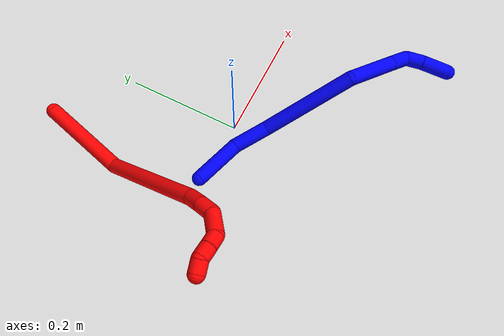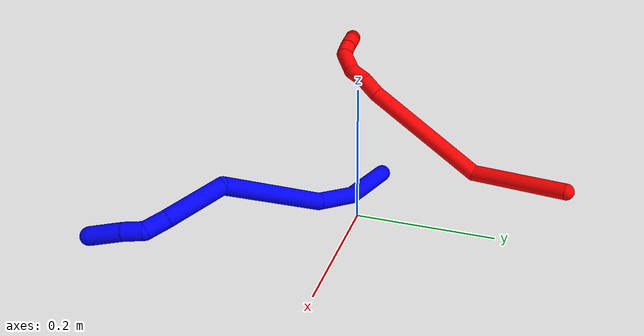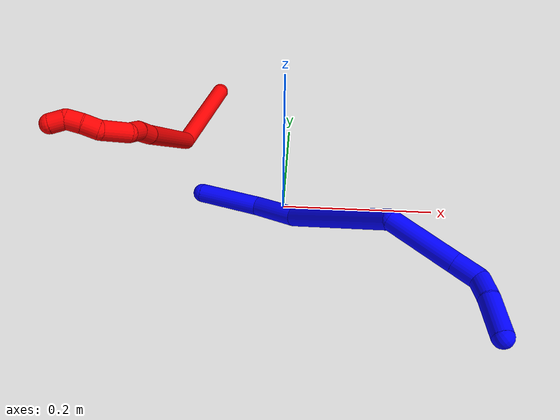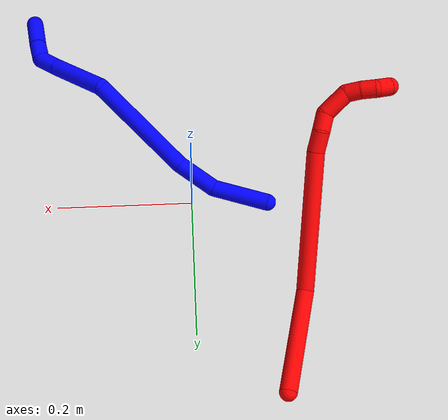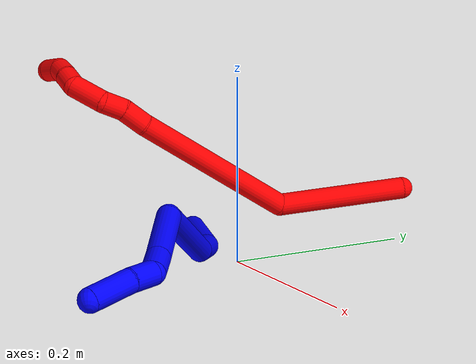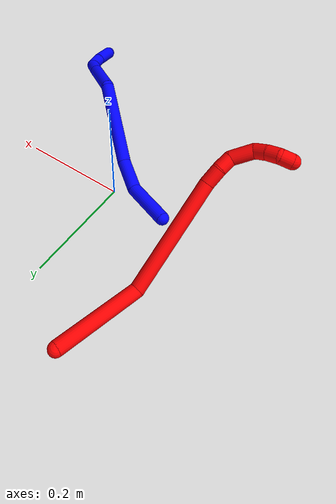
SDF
<sdf version="1.7">
 <world name="default">
  <plugin name="TubeGeneratorPlugin" filename="libtube_generator_plugin.so"/>
  <model name="photoneo_s_sensor">
   <static>1</static>
   <pose>0 0 2 1.57079 1.57079 3.14159</pose>
   <link name="link">
    <inertial><mass>0.1</mass></inertial>
    <sensor name="sensor" type="depth">
     <update_rate>30</update_rate>
     <camera>
      <horizontal_fov>1.22</horizontal_fov>
      <image><width>1920</width><height>1200</height><format>B8G8R8</format></image>
      <clip><near>0.1</near><far>4</far></clip>
      <depth_camera><output>points</output></depth_camera>
     </camera>
     <plugin name="camera_plugin" filename="libgazebo_ros_depth_camera.so">
      <baseline>0.2</baseline>
      <alwaysOn>1</alwaysOn>
      <updateRate>0.0</updateRate>
      <cameraName>camera_ir</cameraName>
      <imageTopicName>/camera/color/image_raw</imageTopicName>
      <cameraInfoTopicName>/camera/color/camera_info</cameraInfoTopicName>
      <depthImageTopicName>/camera/depth/image_raw</depthImageTopicName>
      <depthImageCameraInfoTopicName>/camera/depth/camera_info</depthImageCameraInfoTopicName>
      <pointCloudTopicName>/camera/depth/points</pointCloudTopicName>
      <frameName>fr_optical</frameName>
      <pointCloudCutoff>0.1</pointCloudCutoff>
      <pointCloudCutoffMax>2.0</pointCloudCutoffMax>
      <distortionK1>0</distortionK1>
      <distortionK2>0</distortionK2>
      <distortionK3>0</distortionK3>
      <distortionT1>0</distortionT1>
      <distortionT2>0</distortionT2>
      <CxPrime>0</CxPrime>
      <Cx>0</Cx>
      <Cy>0</Cy>
      <focalLength>0</focalLength>
      <hackBaseline>0</hackBaseline>
     </plugin>
    </sensor>
   </link>
  </model>
  <gravity>0 0 -9.8</gravity>
  <magnetic_field>6e-06 2.3e-05 -4.2e-05</magnetic_field>
  <atmosphere type="adiabatic"/>
  <physics name="default_physics" default="0" type="ode">
   <max_step_size>0.003</max_step_size>
   <real_time_factor>1</real_time_factor>
   <real_time_update_rate>1000</real_time_update_rate>
   <max_contacts>10000</max_contacts>
   <ode>
    <solver>
     <type>quick</type>
     <iters>100</iters>
     <sor>1.3</sor>
     <use_dynamic_moi_rescaling>0</use_dynamic_moi_rescaling>
    </solver>
    <constraints>
     <contact_max_correcting_vel>0</contact_max_correcting_vel>
     <contact_surface_layer>0.001</contact_surface_layer>
     <cfm>0</cfm>
     <erp>0.2</erp>
    </constraints>
   </ode>
  </physics>
  <scene><ambient>0.4 0.4 0.4 1</ambient><background>0.7 0.7 0.7 1</background><shadows>0</shadows></scene>
  <audio><device>default</device></audio>
  <spherical_coordinates>
   <surface_model>EARTH_WGS84</surface_model>
   <latitude_deg>0</latitude_deg>
   <longitude_deg>0</longitude_deg>
   <elevation>0</elevation>
   <heading_deg>0</heading_deg>
  </spherical_coordinates>
  <model name="bin">
   <static>1</static>
   <link name="bottom">
    <collision name="collision-bottom">
     <pose>0 0 -0.01 0 -0 0</pose>
     <geometry><box><size>0.8 0.6 0.02</size></box></geometry>
     <surface>
      <friction><ode><mu>100</mu><mu2>100</mu2></ode></friction>
      <contact><collide_bitmask>65535</collide_bitmask></contact>
     </surface>
    </collision>
   </link>
   <link name="west_wall">
    <collision name="collision-west_wall">
     <pose>-0.41 0 0.1 0 -0 0</pose>
     <geometry><box><size>0.02 0.6 0.2</size></box></geometry>
     <surface>
      <friction><ode><mu>100</mu><mu2>100</mu2></ode></friction>
      <contact><collide_bitmask>65535</collide_bitmask></contact>
     </surface>
    </collision>
   </link>
   <link name="east_wall">
    <collision name="collision-east_wall">
     <pose>0.41 0 0.1 0 -0 0</pose>
     <geometry><box><size>0.02 0.6 0.2</size></box></geometry>
     <surface>
      <friction><ode><mu>100</mu><mu2>100</mu2></ode></friction>
      <contact><collide_bitmask>65535</collide_bitmask></contact>
     </surface>
    </collision>
   </link>
   <link name="south_wall">
    <collision name="collision-south_wall">
     <pose>0 -0.31 0.1 0 -0 0</pose>
     <geometry><box><size>0.8 0.02 0.2</size></box></geometry>
     <surface>
      <friction><ode><mu>100</mu><mu2>100</mu2></ode></friction>
      <contact><collide_bitmask>65535</collide_bitmask></contact>
     </surface>
    </collision>
   </link>
   <link name="north_wall">
    <collision name="collision-north_wall">
     <pose>0 0.31 0.1 0 -0 0</pose>
     <geometry><box><size>0.8 0.02 0.2</size></box></geometry>
     <surface>
      <friction><ode><mu>100</mu><mu2>100</mu2></ode></friction>
      <contact><collide_bitmask>65535</collide_bitmask></contact>
     </surface>
    </collision>
   </link>
  </model>
  <model name="1">
   <static>0</static>
   <link name="1">
    <collision name="collision-cylinder-e_1_1_4">
     <pose>0.012807 -0.024182 0.030929 0.663596 0.315327 0.109441</pose>
     <geometry><cylinder><radius>0.0125</radius><length>0.082593</length></cylinder></geometry>
     <surface>
      <friction><ode><mu>1.16</mu><mu2>1.16</mu2><slip1>0</slip1><slip2>0</slip2></ode></friction>
      <contact><ode><kp>1e+06</kp><kd>1</kd><max_vel>0</max_vel><min_depth>0.001</min_depth></ode></contact>
     </surface>
    </collision>
    <visual name="visual-cylinder-e_1_1_4">
     <pose>0.012807 -0.024182 0.030929 0.663596 0.315327 0.109441</pose>
     <geometry><cylinder><radius>0.0125</radius><length>0.082593</length></cylinder></geometry>
     <material><ambient>0 0 1 1</ambient></material>
    </visual>
    <collision name="collision-cylinder-e_2_4_5">
     <pose>0.044665 -0.062215 0.081857 0.605666 0.664349 0.214729</pose>
     <geometry><cylinder><radius>0.0125</radius><length>0.061798</length></cylinder></geometry>
     <surface>
      <friction><ode><mu>1.16</mu><mu2>1.16</mu2><slip1>0</slip1><slip2>0</slip2></ode></friction>
      <contact><ode><kp>1e+06</kp><kd>1</kd><max_vel>0</max_vel><min_depth>0.001</min_depth></ode></contact>
     </surface>
    </collision>
    <visual name="visual-cylinder-e_2_4_5">
     <pose>0.044665 -0.062215 0.081857 0.605666 0.664349 0.214729</pose>
     <geometry><cylinder><radius>0.0125</radius><length>0.061798</length></cylinder></geometry>
     <material><ambient>0 0 1 1</ambient></material>
    </visual>
    <collision name="collision-cylinder-e_3_5_6">
     <pose>0.126854 -0.115062 0.135522 0.858655 0.886405 0.427987</pose>
     <geometry><cylinder><radius>0.0125</radius><length>0.162979</length></cylinder></geometry>
     <surface>
      <friction><ode><mu>1.16</mu><mu2>1.16</mu2><slip1>0</slip1><slip2>0</slip2></ode></friction>
      <contact><ode><kp>1e+06</kp><kd>1</kd><max_vel>0</max_vel><min_depth>0.001</min_depth></ode></contact>
     </surface>
    </collision>
    <visual name="visual-cylinder-e_3_5_6">
     <pose>0.126854 -0.115062 0.135522 0.858655 0.886405 0.427987</pose>
     <geometry><cylinder><radius>0.0125</radius><length>0.162979</length></cylinder></geometry>
     <material><ambient>0 0 1 1</ambient></material>
    </visual>
    <collision name="collision-cylinder-e_4_6_7">
     <pose>0.205347 -0.164991 0.20772 0.276435 0.366066 0.051486</pose>
     <geometry><cylinder><radius>0.0125</radius><length>0.085792</length></cylinder></geometry>
     <surface>
      <friction><ode><mu>1.16</mu><mu2>1.16</mu2><slip1>0</slip1><slip2>0</slip2></ode></friction>
      <contact><ode><kp>1e+06</kp><kd>1</kd><max_vel>0</max_vel><min_depth>0.001</min_depth></ode></contact>
     </surface>
    </collision>
    <visual name="visual-cylinder-e_4_6_7">
     <pose>0.205347 -0.164991 0.20772 0.276435 0.366066 0.051486</pose>
     <geometry><cylinder><radius>0.0125</radius><length>0.085792</length></cylinder></geometry>
     <material><ambient>0 0 1 1</ambient></material>
    </visual>
    <collision name="collision-cylinder-e_5_7_8">
     <pose>0.226939 -0.179909 0.260257 0.277292 0.404731 0.057245</pose>
     <geometry><cylinder><radius>0.0125</radius><length>0.031681</length></cylinder></geometry>
     <surface>
      <friction><ode><mu>1.16</mu><mu2>1.16</mu2><slip1>0</slip1><slip2>0</slip2></ode></friction>
      <contact><ode><kp>1e+06</kp><kd>1</kd><max_vel>0</max_vel><min_depth>0.001</min_depth></ode></contact>
     </surface>
    </collision>
    <visual name="visual-cylinder-e_5_7_8">
     <pose>0.226939 -0.179909 0.260257 0.277292 0.404731 0.057245</pose>
     <geometry><cylinder><radius>0.0125</radius><length>0.031681</length></cylinder></geometry>
     <material><ambient>0 0 1 1</ambient></material>
    </visual>
    <collision name="collision-cylinder-e_6_8_9">
     <pose>0.243352 -0.179819 0.282779 -0.446263 0.822744 -0.197342</pose>
     <geometry><cylinder><radius>0.0125</radius><length>0.027762</length></cylinder></geometry>
     <surface>
      <friction><ode><mu>1.16</mu><mu2>1.16</mu2><slip1>0</slip1><slip2>0</slip2></ode></friction>
      <contact><ode><kp>1e+06</kp><kd>1</kd><max_vel>0</max_vel><min_depth>0.001</min_depth></ode></contact>
     </surface>
    </collision>
    <visual name="visual-cylinder-e_6_8_9">
     <pose>0.243352 -0.179819 0.282779 -0.446263 0.822744 -0.197342</pose>
     <geometry><cylinder><radius>0.0125</radius><length>0.027762</length></cylinder></geometry>
     <material><ambient>0 0 1 1</ambient></material>
    </visual>
    <collision name="collision-cylinder-e_7_9_2">
     <pose>0.268735 -0.166421 0.306897 -0.538657 0.696786 -0.199849</pose>
     <geometry><cylinder><radius>0.0125</radius><length>0.047395</length></cylinder></geometry>
     <surface>
      <friction><ode><mu>1.16</mu><mu2>1.16</mu2><slip1>0</slip1><slip2>0</slip2></ode></friction>
      <contact><ode><kp>1e+06</kp><kd>1</kd><max_vel>0</max_vel><min_depth>0.001</min_depth></ode></contact>
     </surface>
    </collision>
    <visual name="visual-cylinder-e_7_9_2">
     <pose>0.268735 -0.166421 0.306897 -0.538657 0.696786 -0.199849</pose>
     <geometry><cylinder><radius>0.0125</radius><length>0.047395</length></cylinder></geometry>
     <material><ambient>0 0 1 1</ambient></material>
    </visual>
    <collision name="collision-sphere-2">
     <pose>0.283943 -0.157098 0.322497 0 -0 0</pose>
     <geometry><sphere><radius>0.0125</radius></sphere></geometry>
     <surface>
      <friction><ode><mu>1.16</mu><mu2>1.16</mu2><slip1>0</slip1><slip2>0</slip2></ode></friction>
      <contact><ode><kp>1e+06</kp><kd>1</kd><max_vel>0</max_vel><min_depth>0.001</min_depth></ode></contact>
     </surface>
    </collision>
    <visual name="visual-sphere-2">
     <pose>0.283943 -0.157098 0.322497 0 -0 0</pose>
     <geometry><sphere><radius>0.0125</radius></sphere></geometry>
     <material><ambient>0 0 1 1</ambient></material>
    </visual>
    <collision name="collision-sphere-9">
     <pose>0.253527 -0.175744 0.291297 0 -0 0</pose>
     <geometry><sphere><radius>0.0125</radius></sphere></geometry>
     <surface>
      <friction><ode><mu>1.16</mu><mu2>1.16</mu2><slip1>0</slip1><slip2>0</slip2></ode></friction>
      <contact><ode><kp>1e+06</kp><kd>1</kd><max_vel>0</max_vel><min_depth>0.001</min_depth></ode></contact>
     </surface>
    </collision>
    <visual name="visual-sphere-9">
     <pose>0.253527 -0.175744 0.291297 0 -0 0</pose>
     <geometry><sphere><radius>0.0125</radius></sphere></geometry>
     <material><ambient>0 0 1 1</ambient></material>
    </visual>
    <collision name="collision-sphere-4">
     <pose>0.025614 -0.048365 0.061857 0 -0 0</pose>
     <geometry><sphere><radius>0.0125</radius></sphere></geometry>
     <surface>
      <friction><ode><mu>1.16</mu><mu2>1.16</mu2><slip1>0</slip1><slip2>0</slip2></ode></friction>
      <contact><ode><kp>1e+06</kp><kd>1</kd><max_vel>0</max_vel><min_depth>0.001</min_depth></ode></contact>
     </surface>
    </collision>
    <visual name="visual-sphere-4">
     <pose>0.025614 -0.048365 0.061857 0 -0 0</pose>
     <geometry><sphere><radius>0.0125</radius></sphere></geometry>
     <material><ambient>0 0 1 1</ambient></material>
    </visual>
    <collision name="collision-sphere-1">
     <geometry><sphere><radius>0.0125</radius></sphere></geometry>
     <surface>
      <friction><ode><mu>1.16</mu><mu2>1.16</mu2><slip1>0</slip1><slip2>0</slip2></ode></friction>
      <contact><ode><kp>1e+06</kp><kd>1</kd><max_vel>0</max_vel><min_depth>0.001</min_depth></ode></contact>
     </surface>
    </collision>
    <visual name="visual-sphere-1">
     <geometry><sphere><radius>0.0125</radius></sphere></geometry>
     <material><ambient>0 0 1 1</ambient></material>
    </visual>
    <collision name="collision-sphere-8">
     <pose>0.233176 -0.183895 0.274262 0 -0 0</pose>
     <geometry><sphere><radius>0.0125</radius></sphere></geometry>
     <surface>
      <friction><ode><mu>1.16</mu><mu2>1.16</mu2><slip1>0</slip1><slip2>0</slip2></ode></friction>
      <contact><ode><kp>1e+06</kp><kd>1</kd><max_vel>0</max_vel><min_depth>0.001</min_depth></ode></contact>
     </surface>
    </collision>
    <visual name="visual-sphere-8">
     <pose>0.233176 -0.183895 0.274262 0 -0 0</pose>
     <geometry><sphere><radius>0.0125</radius></sphere></geometry>
     <material><ambient>0 0 1 1</ambient></material>
    </visual>
    <collision name="collision-sphere-5">
     <pose>0.063716 -0.076065 0.101858 0 -0 0</pose>
     <geometry><sphere><radius>0.0125</radius></sphere></geometry>
     <surface>
      <friction><ode><mu>1.16</mu><mu2>1.16</mu2><slip1>0</slip1><slip2>0</slip2></ode></friction>
      <contact><ode><kp>1e+06</kp><kd>1</kd><max_vel>0</max_vel><min_depth>0.001</min_depth></ode></contact>
     </surface>
    </collision>
    <visual name="visual-sphere-5">
     <pose>0.063716 -0.076065 0.101858 0 -0 0</pose>
     <geometry><sphere><radius>0.0125</radius></sphere></geometry>
     <material><ambient>0 0 1 1</ambient></material>
    </visual>
    <collision name="collision-sphere-6">
     <pose>0.189993 -0.154059 0.169187 0 -0 0</pose>
     <geometry><sphere><radius>0.0125</radius></sphere></geometry>
     <surface>
      <friction><ode><mu>1.16</mu><mu2>1.16</mu2><slip1>0</slip1><slip2>0</slip2></ode></friction>
      <contact><ode><kp>1e+06</kp><kd>1</kd><max_vel>0</max_vel><min_depth>0.001</min_depth></ode></contact>
     </surface>
    </collision>
    <visual name="visual-sphere-6">
     <pose>0.189993 -0.154059 0.169187 0 -0 0</pose>
     <geometry><sphere><radius>0.0125</radius></sphere></geometry>
     <material><ambient>0 0 1 1</ambient></material>
    </visual>
    <collision name="collision-sphere-7">
     <pose>0.220701 -0.175923 0.246253 0 -0 0</pose>
     <geometry><sphere><radius>0.0125</radius></sphere></geometry>
     <surface>
      <friction><ode><mu>1.16</mu><mu2>1.16</mu2><slip1>0</slip1><slip2>0</slip2></ode></friction>
      <contact><ode><kp>1e+06</kp><kd>1</kd><max_vel>0</max_vel><min_depth>0.001</min_depth></ode></contact>
     </surface>
    </collision>
    <visual name="visual-sphere-7">
     <pose>0.220701 -0.175923 0.246253 0 -0 0</pose>
     <geometry><sphere><radius>0.0125</radius></sphere></geometry>
     <material><ambient>0 0 1 1</ambient></material>
    </visual>
    <inertial>
     <pose>0.137584 -0.114658 0.156324 0 -0 0</pose>
     <mass>0.5</mass>
     <inertia>
      <ixx>0.00047</ixx>
      <ixy>0</ixy>
      <ixz>0</ixz>
      <iyy>0.000531</iyy>
      <iyz>0</iyz>
      <izz>-9.4e-05</izz>
     </inertia>
    </inertial>
   </link>
   <pose>-0.111558 0.007431 0.01237 -2.48179 -0.648956 -1.4927</pose>
  </model>
  <model name="2">
   <static>0</static>
   <link name="2">
    <collision name="collision-cylinder-e_1_1_4">
     <pose>-0.026818 -0.069003 0.002523 1.53425 -0.370464 -0.357455</pose>
     <geometry><cylinder><radius>0.0125</radius><length>0.148148</length></cylinder></geometry>
     <surface>
      <friction><ode><mu>1.16</mu><mu2>1.16</mu2><slip1>0</slip1><slip2>0</slip2></ode></friction>
      <contact><ode><kp>1e+06</kp><kd>1</kd><max_vel>0</max_vel><min_depth>0.001</min_depth></ode></contact>
     </surface>
    </collision>
    <visual name="visual-cylinder-e_1_1_4">
     <pose>-0.026818 -0.069003 0.002523 1.53425 -0.370464 -0.357455</pose>
     <geometry><cylinder><radius>0.0125</radius><length>0.148148</length></cylinder></geometry>
     <material><ambient>1 0 0 1</ambient></material>
    </visual>
    <collision name="collision-cylinder-e_2_4_5">
     <pose>-0.107211 -0.202795 -0.047162 2.24906 -0.572052 -1.10226</pose>
     <geometry><cylinder><radius>0.0125</radius><length>0.197924</length></cylinder></geometry>
     <surface>
      <friction><ode><mu>1.16</mu><mu2>1.16</mu2><slip1>0</slip1><slip2>0</slip2></ode></friction>
      <contact><ode><kp>1e+06</kp><kd>1</kd><max_vel>0</max_vel><min_depth>0.001</min_depth></ode></contact>
     </surface>
    </collision>
    <visual name="visual-cylinder-e_2_4_5">
     <pose>-0.107211 -0.202795 -0.047162 2.24906 -0.572052 -1.10226</pose>
     <geometry><cylinder><radius>0.0125</radius><length>0.197924</length></cylinder></geometry>
     <material><ambient>1 0 0 1</ambient></material>
    </visual>
    <collision name="collision-cylinder-e_3_5_6">
     <pose>-0.166475 -0.27747 -0.108705 2.32763 -0.396392 -0.872023</pose>
     <geometry><cylinder><radius>0.0125</radius><length>0.029478</length></cylinder></geometry>
     <surface>
      <friction><ode><mu>1.16</mu><mu2>1.16</mu2><slip1>0</slip1><slip2>0</slip2></ode></friction>
      <contact><ode><kp>1e+06</kp><kd>1</kd><max_vel>0</max_vel><min_depth>0.001</min_depth></ode></contact>
     </surface>
    </collision>
    <visual name="visual-cylinder-e_3_5_6">
     <pose>-0.166475 -0.27747 -0.108705 2.32763 -0.396392 -0.872023</pose>
     <geometry><cylinder><radius>0.0125</radius><length>0.029478</length></cylinder></geometry>
     <material><ambient>1 0 0 1</ambient></material>
    </visual>
    <collision name="collision-cylinder-e_4_6_7">
     <pose>-0.177168 -0.297376 -0.123192 2.04559 -0.417764 -0.668522</pose>
     <geometry><cylinder><radius>0.0125</radius><length>0.024657</length></cylinder></geometry>
     <surface>
      <friction><ode><mu>1.16</mu><mu2>1.16</mu2><slip1>0</slip1><slip2>0</slip2></ode></friction>
      <contact><ode><kp>1e+06</kp><kd>1</kd><max_vel>0</max_vel><min_depth>0.001</min_depth></ode></contact>
     </surface>
    </collision>
    <visual name="visual-cylinder-e_4_6_7">
     <pose>-0.177168 -0.297376 -0.123192 2.04559 -0.417764 -0.668522</pose>
     <geometry><cylinder><radius>0.0125</radius><length>0.024657</length></cylinder></geometry>
     <material><ambient>1 0 0 1</ambient></material>
    </visual>
    <collision name="collision-cylinder-e_5_7_8">
     <pose>-0.179063 -0.323387 -0.139002 2.15876 0.160261 0.297857</pose>
     <geometry><cylinder><radius>0.0125</radius><length>0.038933</length></cylinder></geometry>
     <surface>
      <friction><ode><mu>1.16</mu><mu2>1.16</mu2><slip1>0</slip1><slip2>0</slip2></ode></friction>
      <contact><ode><kp>1e+06</kp><kd>1</kd><max_vel>0</max_vel><min_depth>0.001</min_depth></ode></contact>
     </surface>
    </collision>
    <visual name="visual-cylinder-e_5_7_8">
     <pose>-0.179063 -0.323387 -0.139002 2.15876 0.160261 0.297857</pose>
     <geometry><cylinder><radius>0.0125</radius><length>0.038933</length></cylinder></geometry>
     <material><ambient>1 0 0 1</ambient></material>
    </visual>
    <collision name="collision-cylinder-e_6_8_9">
     <pose>-0.16919 -0.344363 -0.15583 2.46186 0.706285 1.61235</pose>
     <geometry><cylinder><radius>0.0125</radius><length>0.020853</length></cylinder></geometry>
     <surface>
      <friction><ode><mu>1.16</mu><mu2>1.16</mu2><slip1>0</slip1><slip2>0</slip2></ode></friction>
      <contact><ode><kp>1e+06</kp><kd>1</kd><max_vel>0</max_vel><min_depth>0.001</min_depth></ode></contact>
     </surface>
    </collision>
    <visual name="visual-cylinder-e_6_8_9">
     <pose>-0.16919 -0.344363 -0.15583 2.46186 0.706285 1.61235</pose>
     <geometry><cylinder><radius>0.0125</radius><length>0.020853</length></cylinder></geometry>
     <material><ambient>1 0 0 1</ambient></material>
    </visual>
    <collision name="collision-cylinder-e_7_9_10">
     <pose>-0.155031 -0.354125 -0.16675 2.35355 0.831753 1.63114</pose>
     <geometry><cylinder><radius>0.0125</radius><length>0.020001</length></cylinder></geometry>
     <surface>
      <friction><ode><mu>1.16</mu><mu2>1.16</mu2><slip1>0</slip1><slip2>0</slip2></ode></friction>
      <contact><ode><kp>1e+06</kp><kd>1</kd><max_vel>0</max_vel><min_depth>0.001</min_depth></ode></contact>
     </surface>
    </collision>
    <visual name="visual-cylinder-e_7_9_10">
     <pose>-0.155031 -0.354125 -0.16675 2.35355 0.831753 1.63114</pose>
     <geometry><cylinder><radius>0.0125</radius><length>0.020001</length></cylinder></geometry>
     <material><ambient>1 0 0 1</ambient></material>
    </visual>
    <collision name="collision-cylinder-e_8_10_2">
     <pose>-0.141162 -0.366519 -0.171735 1.60144 0.704466 0.724545</pose>
     <geometry><cylinder><radius>0.0125</radius><length>0.020006</length></cylinder></geometry>
     <surface>
      <friction><ode><mu>1.16</mu><mu2>1.16</mu2><slip1>0</slip1><slip2>0</slip2></ode></friction>
      <contact><ode><kp>1e+06</kp><kd>1</kd><max_vel>0</max_vel><min_depth>0.001</min_depth></ode></contact>
     </surface>
    </collision>
    <visual name="visual-cylinder-e_8_10_2">
     <pose>-0.141162 -0.366519 -0.171735 1.60144 0.704466 0.724545</pose>
     <geometry><cylinder><radius>0.0125</radius><length>0.020006</length></cylinder></geometry>
     <material><ambient>1 0 0 1</ambient></material>
    </visual>
    <collision name="collision-sphere-2">
     <pose>-0.134684 -0.374137 -0.171968 0 -0 0</pose>
     <geometry><sphere><radius>0.0125</radius></sphere></geometry>
     <surface>
      <friction><ode><mu>1.16</mu><mu2>1.16</mu2><slip1>0</slip1><slip2>0</slip2></ode></friction>
      <contact><ode><kp>1e+06</kp><kd>1</kd><max_vel>0</max_vel><min_depth>0.001</min_depth></ode></contact>
     </surface>
    </collision>
    <visual name="visual-sphere-2">
     <pose>-0.134684 -0.374137 -0.171968 0 -0 0</pose>
     <geometry><sphere><radius>0.0125</radius></sphere></geometry>
     <material><ambient>1 0 0 1</ambient></material>
    </visual>
    <collision name="collision-sphere-10">
     <pose>-0.14764 -0.358901 -0.171501 0 -0 0</pose>
     <geometry><sphere><radius>0.0125</radius></sphere></geometry>
     <surface>
      <friction><ode><mu>1.16</mu><mu2>1.16</mu2><slip1>0</slip1><slip2>0</slip2></ode></friction>
      <contact><ode><kp>1e+06</kp><kd>1</kd><max_vel>0</max_vel><min_depth>0.001</min_depth></ode></contact>
     </surface>
    </collision>
    <visual name="visual-sphere-10">
     <pose>-0.14764 -0.358901 -0.171501 0 -0 0</pose>
     <geometry><sphere><radius>0.0125</radius></sphere></geometry>
     <material><ambient>1 0 0 1</ambient></material>
    </visual>
    <collision name="collision-sphere-9">
     <pose>-0.162423 -0.349349 -0.162 0 -0 0</pose>
     <geometry><sphere><radius>0.0125</radius></sphere></geometry>
     <surface>
      <friction><ode><mu>1.16</mu><mu2>1.16</mu2><slip1>0</slip1><slip2>0</slip2></ode></friction>
      <contact><ode><kp>1e+06</kp><kd>1</kd><max_vel>0</max_vel><min_depth>0.001</min_depth></ode></contact>
     </surface>
    </collision>
    <visual name="visual-sphere-9">
     <pose>-0.162423 -0.349349 -0.162 0 -0 0</pose>
     <geometry><sphere><radius>0.0125</radius></sphere></geometry>
     <material><ambient>1 0 0 1</ambient></material>
    </visual>
    <collision name="collision-sphere-4">
     <pose>-0.053637 -0.138005 0.005045 0 -0 0</pose>
     <geometry><sphere><radius>0.0125</radius></sphere></geometry>
     <surface>
      <friction><ode><mu>1.16</mu><mu2>1.16</mu2><slip1>0</slip1><slip2>0</slip2></ode></friction>
      <contact><ode><kp>1e+06</kp><kd>1</kd><max_vel>0</max_vel><min_depth>0.001</min_depth></ode></contact>
     </surface>
    </collision>
    <visual name="visual-sphere-4">
     <pose>-0.053637 -0.138005 0.005045 0 -0 0</pose>
     <geometry><sphere><radius>0.0125</radius></sphere></geometry>
     <material><ambient>1 0 0 1</ambient></material>
    </visual>
    <collision name="collision-sphere-1">
     <geometry><sphere><radius>0.0125</radius></sphere></geometry>
     <surface>
      <friction><ode><mu>1.16</mu><mu2>1.16</mu2><slip1>0</slip1><slip2>0</slip2></ode></friction>
      <contact><ode><kp>1e+06</kp><kd>1</kd><max_vel>0</max_vel><min_depth>0.001</min_depth></ode></contact>
     </surface>
    </collision>
    <visual name="visual-sphere-1">
     <geometry><sphere><radius>0.0125</radius></sphere></geometry>
     <material><ambient>1 0 0 1</ambient></material>
    </visual>
    <collision name="collision-sphere-8">
     <pose>-0.175957 -0.339377 -0.149661 0 -0 0</pose>
     <geometry><sphere><radius>0.0125</radius></sphere></geometry>
     <surface>
      <friction><ode><mu>1.16</mu><mu2>1.16</mu2><slip1>0</slip1><slip2>0</slip2></ode></friction>
      <contact><ode><kp>1e+06</kp><kd>1</kd><max_vel>0</max_vel><min_depth>0.001</min_depth></ode></contact>
     </surface>
    </collision>
    <visual name="visual-sphere-8">
     <pose>-0.175957 -0.339377 -0.149661 0 -0 0</pose>
     <geometry><sphere><radius>0.0125</radius></sphere></geometry>
     <material><ambient>1 0 0 1</ambient></material>
    </visual>
    <collision name="collision-sphere-5">
     <pose>-0.160785 -0.267585 -0.09937 0 -0 0</pose>
     <geometry><sphere><radius>0.0125</radius></sphere></geometry>
     <surface>
      <friction><ode><mu>1.16</mu><mu2>1.16</mu2><slip1>0</slip1><slip2>0</slip2></ode></friction>
      <contact><ode><kp>1e+06</kp><kd>1</kd><max_vel>0</max_vel><min_depth>0.001</min_depth></ode></contact>
     </surface>
    </collision>
    <visual name="visual-sphere-5">
     <pose>-0.160785 -0.267585 -0.09937 0 -0 0</pose>
     <geometry><sphere><radius>0.0125</radius></sphere></geometry>
     <material><ambient>1 0 0 1</ambient></material>
    </visual>
    <collision name="collision-sphere-6">
     <pose>-0.172166 -0.287354 -0.118041 0 -0 0</pose>
     <geometry><sphere><radius>0.0125</radius></sphere></geometry>
     <surface>
      <friction><ode><mu>1.16</mu><mu2>1.16</mu2><slip1>0</slip1><slip2>0</slip2></ode></friction>
      <contact><ode><kp>1e+06</kp><kd>1</kd><max_vel>0</max_vel><min_depth>0.001</min_depth></ode></contact>
     </surface>
    </collision>
    <visual name="visual-sphere-6">
     <pose>-0.172166 -0.287354 -0.118041 0 -0 0</pose>
     <geometry><sphere><radius>0.0125</radius></sphere></geometry>
     <material><ambient>1 0 0 1</ambient></material>
    </visual>
    <collision name="collision-sphere-7">
     <pose>-0.18217 -0.307398 -0.128343 0 -0 0</pose>
     <geometry><sphere><radius>0.0125</radius></sphere></geometry>
     <surface>
      <friction><ode><mu>1.16</mu><mu2>1.16</mu2><slip1>0</slip1><slip2>0</slip2></ode></friction>
      <contact><ode><kp>1e+06</kp><kd>1</kd><max_vel>0</max_vel><min_depth>0.001</min_depth></ode></contact>
     </surface>
    </collision>
    <visual name="visual-sphere-7">
     <pose>-0.18217 -0.307398 -0.128343 0 -0 0</pose>
     <geometry><sphere><radius>0.0125</radius></sphere></geometry>
     <material><ambient>1 0 0 1</ambient></material>
    </visual>
    <inertial>
     <pose>-0.101786 -0.200118 -0.06127 0 -0 0</pose>
     <mass>0.5</mass>
     <inertia>
      <ixx>-9e-05</ixx>
      <ixy>0</ixy>
      <ixz>0</ixz>
      <iyy>-0.000506</iyy>
      <iyz>0</iyz>
      <izz>0.001137</izz>
     </inertia>
    </inertial>
   </link>
   <pose>-0.118983 0.287756 0.022749 3.01225 0.216394 2.4942</pose>
  </model>
 </world>
</sdf>
